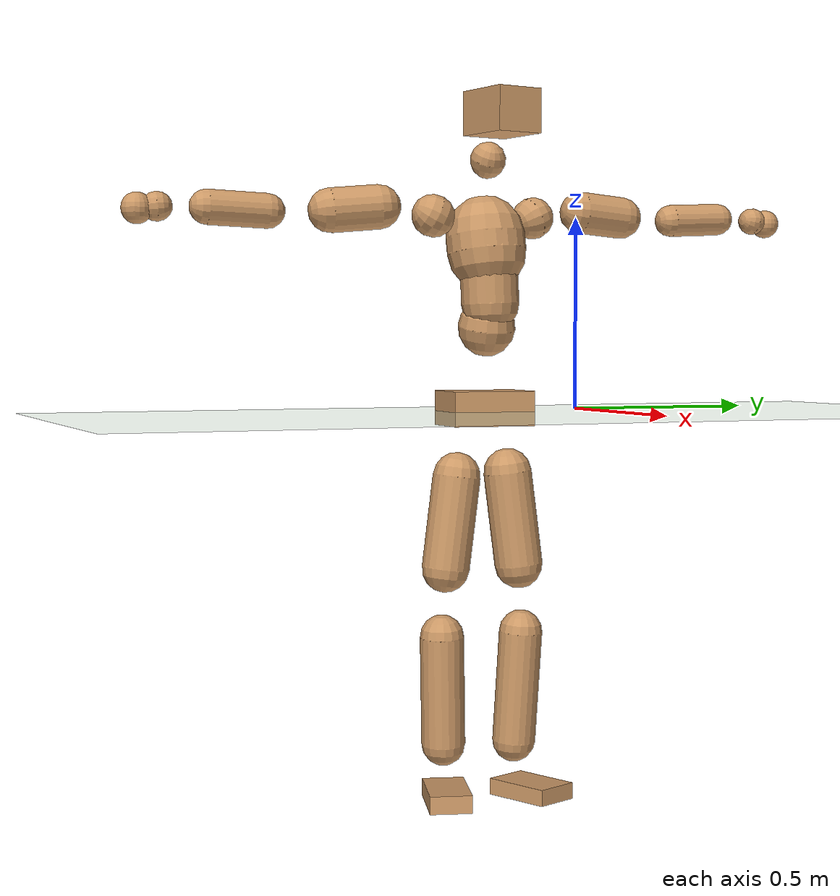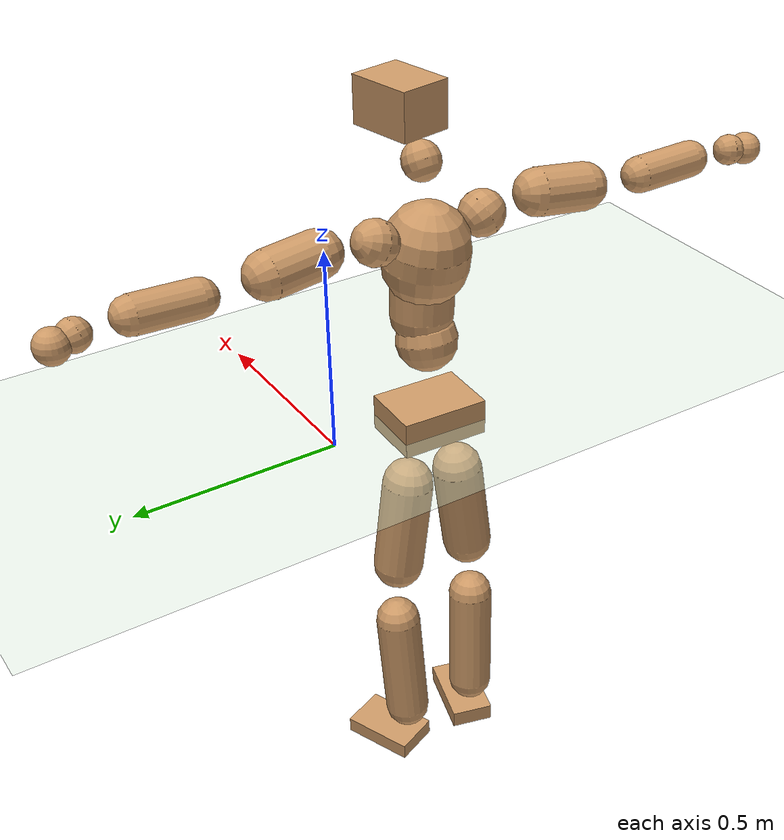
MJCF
<mujoco model="humanoid">
  <compiler coordinate="local" angle="radian"/>
  <default>
    <joint damping="0.0" armature="0.01" stiffness="0.0" limited="true"/>
    <geom conaffinity="1" condim="3" contype="7" margin="0.001" rgba="0.8 0.6 .4 1"/>
  </default>
  <asset>
    <texture type="skybox" builtin="gradient" rgb1=".4 .5 .6" rgb2="0 0 0" width="100" height="100"/>
    <texture builtin="flat" height="1278" mark="cross" markrgb="1 1 1" name="texgeom" random="0.01" rgb1="0.8 0.6 0.4" rgb2="0.8 0.6 0.4" type="cube" width="127"/>
    <texture builtin="checker" height="100" name="texplane" rgb1="0 0 0" rgb2="0.8 0.8 0.8" type="2d" width="100"/>
    <material name="MatPlane" reflectance="0.5" shininess="1" specular="1" texrepeat="60 60" texture="texplane"/>
    <material name="geom" texture="texgeom" texuniform="true"/>
  </asset>
  <worldbody>
    <light cutoff="100" diffuse="1 1 1" dir="-0 0 -1.3" directional="true" exponent="1" pos="0 0 1.3" specular=".1 .1 .1"/>
    <geom conaffinity="1" condim="3" name="floor" pos="0 0 0" rgba="0.8 0.9 0.8 1" size="100 100 .2" type="plane" material="MatPlane"/>
    <body name="Pelvis" pos="-0.0005 -0.2547 0.0144">
      <freejoint name="Pelvis"/>
      <geom type="box" contype="1" conaffinity="1" density="5359.375083" pos="-0.0135 0.0006 -0.0091" size="0.0783 0.1086 0.0448" quat="0.9998 0.0000 0.0000 -0.0205" name="Pelvis"/>
      <body name="L_Hip" pos="-0.0259 0.0597 -0.0864">
        <joint name="L_Hip_x" type="hinge" pos="0 0 0" axis="1 0 0" stiffness="1600" damping="160" armature="0.02" range="-180.0000 180.0000"/>
        <joint name="L_Hip_y" type="hinge" pos="0 0 0" axis="0 1 0" stiffness="1600" damping="160" armature="0.02" range="-180.0000 180.0000"/>
        <joint name="L_Hip_z" type="hinge" pos="0 0 0" axis="0 0 1" stiffness="1600" damping="160" armature="0.02" range="-180.0000 180.0000"/>
        <geom type="capsule" contype="1" conaffinity="1" density="2040.816327" size="0.0628" fromto="0.0019 0.0112 -0.0921 0.0070 0.0410 -0.3362" name="L_Hip"/>
        <body name="L_Knee" pos="0.0089 0.0522 -0.4283">
          <joint name="L_Knee_x" type="hinge" pos="0 0 0" axis="1 0 0" stiffness="1600" damping="160" armature="0.02" range="-180.0000 180.0000"/>
          <joint name="L_Knee_y" type="hinge" pos="0 0 0" axis="0 1 0" stiffness="1600" damping="160" armature="0.02" range="-180.0000 180.0000"/>
          <joint name="L_Knee_z" type="hinge" pos="0 0 0" axis="0 0 1" stiffness="1600" damping="160" armature="0.02" range="-180.0000 180.0000"/>
          <geom type="capsule" contype="1" conaffinity="1" density="1234.567901" size="0.0568" fromto="-0.0069 -0.0027 -0.0865 -0.0303 -0.0118 -0.3815" name="L_Knee"/>
          <body name="L_Ankle" pos="-0.0372 -0.0145 -0.468">
            <joint name="L_Ankle_x" type="hinge" pos="0 0 0" axis="1 0 0" stiffness="1600" damping="160" armature="0.02" range="-180.0000 180.0000"/>
            <joint name="L_Ankle_y" type="hinge" pos="0 0 0" axis="0 1 0" stiffness="1600" damping="160" armature="0.02" range="-180.0000 180.0000"/>
            <joint name="L_Ankle_z" type="hinge" pos="0 0 0" axis="0 0 1" stiffness="1600" damping="160" armature="0.02" range="-180.0000 180.0000"/>
            <geom type="box" contype="1" conaffinity="1" density="999.999962" pos="0.0651 0.0269 -0.0338" size="0.0934 0.0592 0.0214" quat="0.9809 0.0000 0.0000 0.1946" name="L_Ankle"/>
            <body name="L_Toe" pos="0.1302 0.0538 -0.0676">
              <joint name="L_Toe_x" type="hinge" pos="0 0 0" axis="1 0 0" stiffness="1000" damping="100" armature="0.02" range="-180.0000 180.0000"/>
              <joint name="L_Toe_y" type="hinge" pos="0 0 0" axis="0 1 0" stiffness="1000" damping="100" armature="0.02" range="-180.0000 180.0000"/>
              <joint name="L_Toe_z" type="hinge" pos="0 0 0" axis="0 0 1" stiffness="1000" damping="100" armature="0.02" range="-180.0000 180.0000"/>
              <geom type="box" contype="1" conaffinity="1" density="7526012.834494" pos="0.0000 0.0000 0.0358" size="0.0011 0.0027 0.0012" quat="0.9801 0.0000 0.0000 0.1983" name="L_Toe"/>
            </body>
          </body>
        </body>
      </body>
      <body name="R_Hip" pos="-0.0244 -0.061 -0.0936">
        <joint name="R_Hip_x" type="hinge" pos="0 0 0" axis="1 0 0" stiffness="1600" damping="160" armature="0.02" range="-180.0000 180.0000"/>
        <joint name="R_Hip_y" type="hinge" pos="0 0 0" axis="0 1 0" stiffness="1600" damping="160" armature="0.02" range="-180.0000 180.0000"/>
        <joint name="R_Hip_z" type="hinge" pos="0 0 0" axis="0 0 1" stiffness="1600" damping="160" armature="0.02" range="-180.0000 180.0000"/>
        <geom type="capsule" contype="1" conaffinity="1" density="2040.816327" size="0.0621" fromto="-0.0011 -0.0114 -0.0914 -0.0039 -0.0414 -0.3317" name="R_Hip"/>
        <body name="R_Knee" pos="-0.0049 -0.0528 -0.4231">
          <joint name="R_Knee_x" type="hinge" pos="0 0 0" axis="1 0 0" stiffness="1600" damping="160" armature="0.02" range="-180.0000 180.0000"/>
          <joint name="R_Knee_y" type="hinge" pos="0 0 0" axis="0 1 0" stiffness="1600" damping="160" armature="0.02" range="-180.0000 180.0000"/>
          <joint name="R_Knee_z" type="hinge" pos="0 0 0" axis="0 0 1" stiffness="1600" damping="160" armature="0.02" range="-180.0000 180.0000"/>
          <geom type="capsule" contype="1" conaffinity="1" density="1234.567901" size="0.0572" fromto="-0.0065 0.0038 -0.0869 -0.0279 0.0162 -0.3745" name="R_Knee"/>
          <body name="R_Ankle" pos="-0.0344 0.02 -0.4614">
            <joint name="R_Ankle_x" type="hinge" pos="0 0 0" axis="1 0 0" stiffness="1600" damping="160" armature="0.02" range="-180.0000 180.0000"/>
            <joint name="R_Ankle_y" type="hinge" pos="0 0 0" axis="0 1 0" stiffness="1600" damping="160" armature="0.02" range="-180.0000 180.0000"/>
            <joint name="R_Ankle_z" type="hinge" pos="0 0 0" axis="0 0 1" stiffness="1600" damping="160" armature="0.02" range="-180.0000 180.0000"/>
            <geom type="box" contype="1" conaffinity="1" density="999.999949" pos="0.0705 -0.0195 -0.0352" size="0.0989 0.0547 0.0231" quat="0.9909 0.0000 0.0000 -0.1346" name="R_Ankle"/>
            <body name="R_Toe" pos="0.141 -0.039 -0.0703">
              <joint name="R_Toe_x" type="hinge" pos="0 0 0" axis="1 0 0" stiffness="1000" damping="100" armature="0.02" range="-180.0000 180.0000"/>
              <joint name="R_Toe_y" type="hinge" pos="0 0 0" axis="0 1 0" stiffness="1000" damping="100" armature="0.02" range="-180.0000 180.0000"/>
              <joint name="R_Toe_z" type="hinge" pos="0 0 0" axis="0 0 1" stiffness="1000" damping="100" armature="0.02" range="-180.0000 180.0000"/>
              <geom type="box" contype="1" conaffinity="1" density="8239403.669088" pos="0.0000 0.0000 0.0369" size="0.0011 0.0026 0.0012" quat="0.9920 0.0000 0.0000 -0.1263" name="R_Toe"/>
            </body>
          </body>
        </body>
      </body>
      <body name="Torso" pos="-0.0306 0.0046 0.1253">
        <joint name="Torso_x" type="hinge" pos="0 0 0" axis="1 0 0" stiffness="2000" damping="200" armature="0.02" range="-180.0000 180.0000"/>
        <joint name="Torso_y" type="hinge" pos="0 0 0" axis="0 1 0" stiffness="2000" damping="200" armature="0.02" range="-180.0000 180.0000"/>
        <joint name="Torso_z" type="hinge" pos="0 0 0" axis="0 0 1" stiffness="2000" damping="200" armature="0.02" range="-180.0000 180.0000"/>
        <geom type="capsule" contype="1" conaffinity="1" density="2040.816327" size="0.0744" fromto="0.0163 0.0022 0.0736 0.0168 0.0022 0.0756" name="Torso"/>
        <body name="Spine" pos="0.0331 0.0044 0.1492">
          <joint name="Spine_x" type="hinge" pos="0 0 0" axis="1 0 0" stiffness="2000" damping="200" armature="0.02" range="-180.0000 180.0000"/>
          <joint name="Spine_y" type="hinge" pos="0 0 0" axis="0 1 0" stiffness="2000" damping="200" armature="0.02" range="-180.0000 180.0000"/>
          <joint name="Spine_z" type="hinge" pos="0 0 0" axis="0 0 1" stiffness="2000" damping="200" armature="0.02" range="-180.0000 180.0000"/>
          <geom type="capsule" contype="1" conaffinity="1" density="2040.816327" size="0.075" fromto="0.0008 -0.0036 0.0749 -0.0001 0.0007 -0.0136" name="Spine"/>
          <body name="Chest" pos="0.0007 -0.003 0.0613">
            <joint name="Chest_x" type="hinge" pos="0 0 0" axis="1 0 0" stiffness="2000" damping="200" armature="0.02" range="-180.0000 180.0000"/>
            <joint name="Chest_y" type="hinge" pos="0 0 0" axis="0 1 0" stiffness="2000" damping="200" armature="0.02" range="-180.0000 180.0000"/>
            <joint name="Chest_z" type="hinge" pos="0 0 0" axis="0 0 1" stiffness="2000" damping="200" armature="0.02" range="-180.0000 180.0000"/>
            <geom type="capsule" contype="1" conaffinity="1" density="2040.816327" size="0.102" fromto="-0.0128 -0.0055 0.1010 -0.0072 -0.0031 0.0571" name="Chest"/>
            <body name="Neck" pos="-0.0199 -0.0133 0.2331">
              <joint name="Neck_x" type="hinge" pos="0 0 0" axis="1 0 0" stiffness="1000" damping="100" armature="0.02" range="-180.0000 180.0000"/>
              <joint name="Neck_y" type="hinge" pos="0 0 0" axis="0 1 0" stiffness="1000" damping="100" armature="0.02" range="-180.0000 180.0000"/>
              <joint name="Neck_z" type="hinge" pos="0 0 0" axis="0 0 1" stiffness="1000" damping="100" armature="0.02" range="-180.0000 180.0000"/>
              <geom type="capsule" contype="1" conaffinity="1" density="1000" size="0.0457" fromto="0.0309 0.0053 0.0560 0.0319 0.0054 0.0577" name="Neck"/>
              <body name="Head" pos="0.0628 0.0107 0.1137">
                <joint name="Head_x" type="hinge" pos="0 0 0" axis="1 0 0" stiffness="1000" damping="100" armature="0.02" range="-180.0000 180.0000"/>
                <joint name="Head_y" type="hinge" pos="0 0 0" axis="0 1 0" stiffness="1000" damping="100" armature="0.02" range="-180.0000 180.0000"/>
                <joint name="Head_z" type="hinge" pos="0 0 0" axis="0 0 1" stiffness="1000" damping="100" armature="0.02" range="-180.0000 180.0000"/>
                <geom type="box" contype="1" conaffinity="1" density="2249.999743" pos="0.0324 0.0063 0.0578" size="0.0814 0.0638 0.0559" quat="0.9953 0.0000 0.0000 0.0964" name="Head"/>
              </body>
            </body>
            <body name="L_Thorax" pos="-0.0177 0.0733 0.1214">
              <joint name="L_Thorax_x" type="hinge" pos="0 0 0" axis="1 0 0" stiffness="1000" damping="100" armature="0.02" range="-180.0000 180.0000"/>
              <joint name="L_Thorax_y" type="hinge" pos="0 0 0" axis="0 1 0" stiffness="1000" damping="100" armature="0.02" range="-180.0000 180.0000"/>
              <joint name="L_Thorax_z" type="hinge" pos="0 0 0" axis="0 0 1" stiffness="1000" damping="100" armature="0.02" range="-180.0000 180.0000"/>
              <geom type="capsule" contype="1" conaffinity="1" density="1000" size="0.0539" fromto="-0.0078 0.0604 0.0260 -0.0080 0.0623 0.0268" name="L_Thorax"/>
              <body name="L_Shoulder" pos="-0.0158 0.1227 0.0528">
                <joint name="L_Shoulder_x" type="hinge" pos="0 0 0" axis="1 0 0" stiffness="1000" damping="100" armature="0.02" range="-720.0000 720.0000"/>
                <joint name="L_Shoulder_y" type="hinge" pos="0 0 0" axis="0 1 0" stiffness="1000" damping="100" armature="0.02" range="-720.0000 720.0000"/>
                <joint name="L_Shoulder_z" type="hinge" pos="0 0 0" axis="0 0 1" stiffness="1000" damping="100" armature="0.02" range="-720.0000 720.0000"/>
                <geom type="capsule" contype="1" conaffinity="1" density="1000" size="0.0549" fromto="-0.0060 0.0844 -0.0069 -0.0147 0.2082 -0.0171" name="L_Shoulder"/>
                <body name="L_Elbow" pos="-0.0206 0.2926 -0.024">
                  <joint name="L_Elbow_x" type="hinge" pos="0 0 0" axis="1 0 0" stiffness="1000" damping="100" armature="0.02" range="-720.0000 720.0000"/>
                  <joint name="L_Elbow_y" type="hinge" pos="0 0 0" axis="0 1 0" stiffness="1000" damping="100" armature="0.02" range="-720.0000 720.0000"/>
                  <joint name="L_Elbow_z" type="hinge" pos="0 0 0" axis="0 0 1" stiffness="1000" damping="100" armature="0.02" range="-720.0000 720.0000"/>
                  <geom type="capsule" contype="1" conaffinity="1" density="1000" size="0.0426" fromto="-0.0020 0.0725 0.0037 -0.0061 0.2185 0.0111" name="L_Elbow"/>
                  <body name="L_Wrist" pos="-0.0081 0.291 0.0148">
                    <joint name="L_Wrist_x" type="hinge" pos="0 0 0" axis="1 0 0" stiffness="600" damping="60" armature="0.02" range="-180.0000 180.0000"/>
                    <joint name="L_Wrist_y" type="hinge" pos="0 0 0" axis="0 1 0" stiffness="600" damping="60" armature="0.02" range="-180.0000 180.0000"/>
                    <joint name="L_Wrist_z" type="hinge" pos="0 0 0" axis="0 0 1" stiffness="600" damping="60" armature="0.02" range="-180.0000 180.0000"/>
                    <geom type="capsule" contype="1" conaffinity="1" density="1000" size="0.0361" fromto="-0.0084 0.0456 -0.0056 -0.0088 0.0475 -0.0058" name="L_Wrist"/>
                    <body name="L_Hand" pos="-0.0171 0.0931 -0.0114">
                      <joint name="L_Hand_x" type="hinge" pos="0 0 0" axis="1 0 0" stiffness="600" damping="60" armature="0.02" range="-180.0000 180.0000"/>
                      <joint name="L_Hand_y" type="hinge" pos="0 0 0" axis="0 1 0" stiffness="600" damping="60" armature="0.02" range="-180.0000 180.0000"/>
                      <joint name="L_Hand_z" type="hinge" pos="0 0 0" axis="0 0 1" stiffness="600" damping="60" armature="0.02" range="-180.0000 180.0000"/>
                      <geom type="sphere" contype="1" conaffinity="1" density="1000" size="0.0381" pos="0.0000 0.0000 0.0000" name="L_Hand"/>
                    </body>
                  </body>
                </body>
              </body>
            </body>
            <body name="R_Thorax" pos="-0.0223 -0.0859 0.1198">
              <joint name="R_Thorax_x" type="hinge" pos="0 0 0" axis="1 0 0" stiffness="1000" damping="100" armature="0.02" range="-180.0000 180.0000"/>
              <joint name="R_Thorax_y" type="hinge" pos="0 0 0" axis="0 1 0" stiffness="1000" damping="100" armature="0.02" range="-180.0000 180.0000"/>
              <joint name="R_Thorax_z" type="hinge" pos="0 0 0" axis="0 0 1" stiffness="1000" damping="100" armature="0.02" range="-180.0000 180.0000"/>
              <geom type="capsule" contype="1" conaffinity="1" density="1000" size="0.0548" fromto="-0.0023 -0.0572 0.0271 -0.0024 -0.0590 0.0280" name="R_Thorax"/>
              <body name="R_Shoulder" pos="-0.0047 -0.1162 0.0551">
                <joint name="R_Shoulder_x" type="hinge" pos="0 0 0" axis="1 0 0" stiffness="1000" damping="100" armature="0.02" range="-720.0000 720.0000"/>
                <joint name="R_Shoulder_y" type="hinge" pos="0 0 0" axis="0 1 0" stiffness="1000" damping="100" armature="0.02" range="-720.0000 720.0000"/>
                <joint name="R_Shoulder_z" type="hinge" pos="0 0 0" axis="0 0 1" stiffness="1000" damping="100" armature="0.02" range="-720.0000 720.0000"/>
                <geom type="capsule" contype="1" conaffinity="1" density="1000" size="0.057" fromto="-0.0087 -0.0862 -0.0079 -0.0210 -0.2096 -0.0192" name="R_Shoulder"/>
                <body name="R_Elbow" pos="-0.0297 -0.2958 -0.0271">
                  <joint name="R_Elbow_x" type="hinge" pos="0 0 0" axis="1 0 0" stiffness="1000" damping="100" armature="0.02" range="-720.0000 720.0000"/>
                  <joint name="R_Elbow_y" type="hinge" pos="0 0 0" axis="0 1 0" stiffness="1000" damping="100" armature="0.02" range="-720.0000 720.0000"/>
                  <joint name="R_Elbow_z" type="hinge" pos="0 0 0" axis="0 0 1" stiffness="1000" damping="100" armature="0.02" range="-720.0000 720.0000"/>
                  <geom type="capsule" contype="1" conaffinity="1" density="1000" size="0.0438" fromto="-0.0016 -0.0738 0.0028 -0.0048 -0.2268 0.0087" name="R_Elbow"/>
                  <body name="R_Wrist" pos="-0.0063 -0.3006 0.0116">
                    <joint name="R_Wrist_x" type="hinge" pos="0 0 0" axis="1 0 0" stiffness="600" damping="60" armature="0.02" range="-180.0000 180.0000"/>
                    <joint name="R_Wrist_y" type="hinge" pos="0 0 0" axis="0 1 0" stiffness="600" damping="60" armature="0.02" range="-180.0000 180.0000"/>
                    <joint name="R_Wrist_z" type="hinge" pos="0 0 0" axis="0 0 1" stiffness="600" damping="60" armature="0.02" range="-180.0000 180.0000"/>
                    <geom type="capsule" contype="1" conaffinity="1" density="1000" size="0.037" fromto="-0.0055 -0.0469 -0.0045 -0.0058 -0.0489 -0.0047" name="R_Wrist"/>
                    <body name="R_Hand" pos="-0.0113 -0.0957 -0.0093">
                      <joint name="R_Hand_x" type="hinge" pos="0 0 0" axis="1 0 0" stiffness="600" damping="60" armature="0.02" range="-180.0000 180.0000"/>
                      <joint name="R_Hand_y" type="hinge" pos="0 0 0" axis="0 1 0" stiffness="600" damping="60" armature="0.02" range="-180.0000 180.0000"/>
                      <joint name="R_Hand_z" type="hinge" pos="0 0 0" axis="0 0 1" stiffness="600" damping="60" armature="0.02" range="-180.0000 180.0000"/>
                      <geom type="sphere" contype="1" conaffinity="1" density="1000" size="0.0388" pos="0.0000 0.0000 0.0000" name="R_Hand"/>
                    </body>
                  </body>
                </body>
              </body>
            </body>
          </body>
        </body>
      </body>
    </body>
  </worldbody>
  <actuator>
    <motor name="L_Hip_x" joint="L_Hip_x" gear="500"/>
    <motor name="L_Hip_y" joint="L_Hip_y" gear="500"/>
    <motor name="L_Hip_z" joint="L_Hip_z" gear="500"/>
    <motor name="L_Knee_x" joint="L_Knee_x" gear="500"/>
    <motor name="L_Knee_y" joint="L_Knee_y" gear="500"/>
    <motor name="L_Knee_z" joint="L_Knee_z" gear="500"/>
    <motor name="L_Ankle_x" joint="L_Ankle_x" gear="500"/>
    <motor name="L_Ankle_y" joint="L_Ankle_y" gear="500"/>
    <motor name="L_Ankle_z" joint="L_Ankle_z" gear="500"/>
    <motor name="L_Toe_x" joint="L_Toe_x" gear="500"/>
    <motor name="L_Toe_y" joint="L_Toe_y" gear="500"/>
    <motor name="L_Toe_z" joint="L_Toe_z" gear="500"/>
    <motor name="R_Hip_x" joint="R_Hip_x" gear="500"/>
    <motor name="R_Hip_y" joint="R_Hip_y" gear="500"/>
    <motor name="R_Hip_z" joint="R_Hip_z" gear="500"/>
    <motor name="R_Knee_x" joint="R_Knee_x" gear="500"/>
    <motor name="R_Knee_y" joint="R_Knee_y" gear="500"/>
    <motor name="R_Knee_z" joint="R_Knee_z" gear="500"/>
    <motor name="R_Ankle_x" joint="R_Ankle_x" gear="500"/>
    <motor name="R_Ankle_y" joint="R_Ankle_y" gear="500"/>
    <motor name="R_Ankle_z" joint="R_Ankle_z" gear="500"/>
    <motor name="R_Toe_x" joint="R_Toe_x" gear="500"/>
    <motor name="R_Toe_y" joint="R_Toe_y" gear="500"/>
    <motor name="R_Toe_z" joint="R_Toe_z" gear="500"/>
    <motor name="Torso_x" joint="Torso_x" gear="500"/>
    <motor name="Torso_y" joint="Torso_y" gear="500"/>
    <motor name="Torso_z" joint="Torso_z" gear="500"/>
    <motor name="Spine_x" joint="Spine_x" gear="500"/>
    <motor name="Spine_y" joint="Spine_y" gear="500"/>
    <motor name="Spine_z" joint="Spine_z" gear="500"/>
    <motor name="Chest_x" joint="Chest_x" gear="500"/>
    <motor name="Chest_y" joint="Chest_y" gear="500"/>
    <motor name="Chest_z" joint="Chest_z" gear="500"/>
    <motor name="Neck_x" joint="Neck_x" gear="500"/>
    <motor name="Neck_y" joint="Neck_y" gear="500"/>
    <motor name="Neck_z" joint="Neck_z" gear="500"/>
    <motor name="Head_x" joint="Head_x" gear="500"/>
    <motor name="Head_y" joint="Head_y" gear="500"/>
    <motor name="Head_z" joint="Head_z" gear="500"/>
    <motor name="L_Thorax_x" joint="L_Thorax_x" gear="500"/>
    <motor name="L_Thorax_y" joint="L_Thorax_y" gear="500"/>
    <motor name="L_Thorax_z" joint="L_Thorax_z" gear="500"/>
    <motor name="L_Shoulder_x" joint="L_Shoulder_x" gear="500"/>
    <motor name="L_Shoulder_y" joint="L_Shoulder_y" gear="500"/>
    <motor name="L_Shoulder_z" joint="L_Shoulder_z" gear="500"/>
    <motor name="L_Elbow_x" joint="L_Elbow_x" gear="500"/>
    <motor name="L_Elbow_y" joint="L_Elbow_y" gear="500"/>
    <motor name="L_Elbow_z" joint="L_Elbow_z" gear="500"/>
    <motor name="L_Wrist_x" joint="L_Wrist_x" gear="500"/>
    <motor name="L_Wrist_y" joint="L_Wrist_y" gear="500"/>
    <motor name="L_Wrist_z" joint="L_Wrist_z" gear="500"/>
    <motor name="L_Hand_x" joint="L_Hand_x" gear="500"/>
    <motor name="L_Hand_y" joint="L_Hand_y" gear="500"/>
    <motor name="L_Hand_z" joint="L_Hand_z" gear="500"/>
    <motor name="R_Thorax_x" joint="R_Thorax_x" gear="500"/>
    <motor name="R_Thorax_y" joint="R_Thorax_y" gear="500"/>
    <motor name="R_Thorax_z" joint="R_Thorax_z" gear="500"/>
    <motor name="R_Shoulder_x" joint="R_Shoulder_x" gear="500"/>
    <motor name="R_Shoulder_y" joint="R_Shoulder_y" gear="500"/>
    <motor name="R_Shoulder_z" joint="R_Shoulder_z" gear="500"/>
    <motor name="R_Elbow_x" joint="R_Elbow_x" gear="500"/>
    <motor name="R_Elbow_y" joint="R_Elbow_y" gear="500"/>
    <motor name="R_Elbow_z" joint="R_Elbow_z" gear="500"/>
    <motor name="R_Wrist_x" joint="R_Wrist_x" gear="500"/>
    <motor name="R_Wrist_y" joint="R_Wrist_y" gear="500"/>
    <motor name="R_Wrist_z" joint="R_Wrist_z" gear="500"/>
    <motor name="R_Hand_x" joint="R_Hand_x" gear="500"/>
    <motor name="R_Hand_y" joint="R_Hand_y" gear="500"/>
    <motor name="R_Hand_z" joint="R_Hand_z" gear="500"/>
  </actuator>
  <contact>
    <exclude body1="Torso" body2="Chest"/>
    <exclude body1="Head" body2="Chest"/>
    <exclude body1="R_Knee" body2="R_Toe"/>
    <exclude body1="R_Knee" body2="L_Ankle"/>
    <exclude body1="R_Knee" body2="L_Toe"/>
    <exclude body1="L_Knee" body2="L_Toe"/>
    <exclude body1="L_Knee" body2="R_Ankle"/>
    <exclude body1="L_Knee" body2="R_Toe"/>
    <exclude body1="L_Shoulder" body2="Chest"/>
    <exclude body1="R_Shoulder" body2="Chest"/>
  </contact>
  <sensor/>
  <size njmax="700" nconmax="700"/>
</mujoco>
